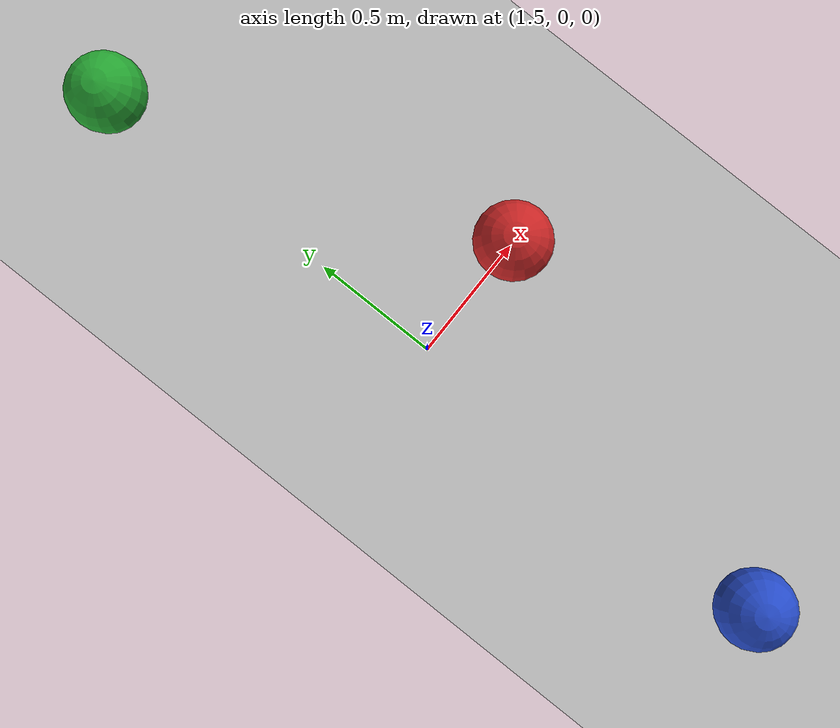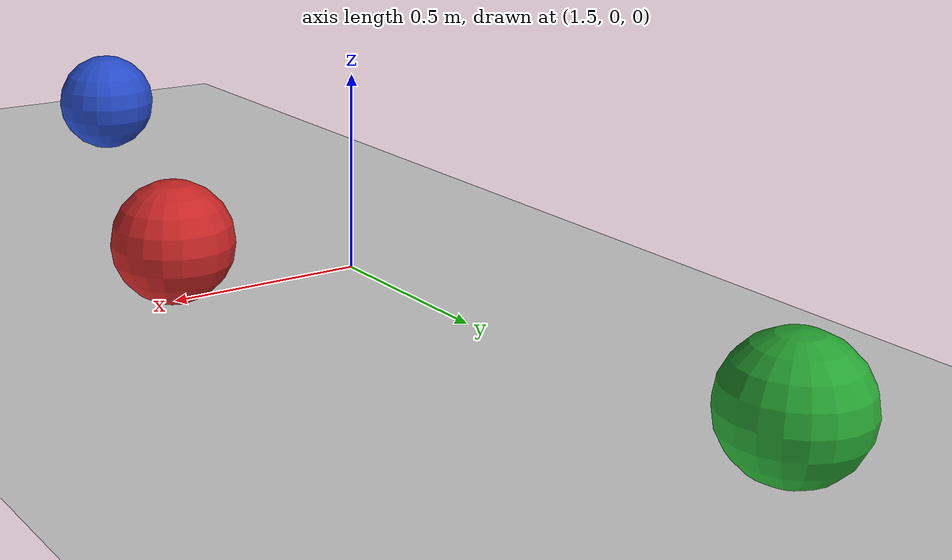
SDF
<?xml version="1.0"?>
<sdf version="1.6">
  <world name="colored_objects">
    <include><uri>model://sun</uri></include>
    <include><uri>model://ground_plane</uri></include>

    <model name="red_ball">
      <pose>2.0 0.0 0.15 0 0 0</pose>
      <static>true</static>
      <link name="l">
        <visual name="v">
          <geometry><sphere><radius>0.15</radius></sphere></geometry>
          <material><script><uri>file://media/materials/scripts/gazebo.material</uri><name>Gazebo/Red</name></script></material>
        </visual>
        <collision name="c"><geometry><sphere><radius>0.15</radius></sphere></geometry></collision>
      </link>
    </model>

    <model name="green_ball">
      <pose>1.5 1.5 0.15 0 0 0</pose>
      <static>true</static>
      <link name="l">
        <visual name="v">
          <geometry><sphere><radius>0.15</radius></sphere></geometry>
          <material><script><uri>file://media/materials/scripts/gazebo.material</uri><name>Gazebo/Green</name></script></material>
        </visual>
        <collision name="c"><geometry><sphere><radius>0.15</radius></sphere></geometry></collision>
      </link>
    </model>

    <model name="blue_ball">
      <pose>1.5 -1.5 0.15 0 0 0</pose>
      <static>true</static>
      <link name="l">
        <visual name="v">
          <geometry><sphere><radius>0.15</radius></sphere></geometry>
          <material><script><uri>file://media/materials/scripts/gazebo.material</uri><name>Gazebo/Blue</name></script></material>
        </visual>
        <collision name="c"><geometry><sphere><radius>0.15</radius></sphere></geometry></collision>
      </link>
    </model>
  </world>
</sdf>
